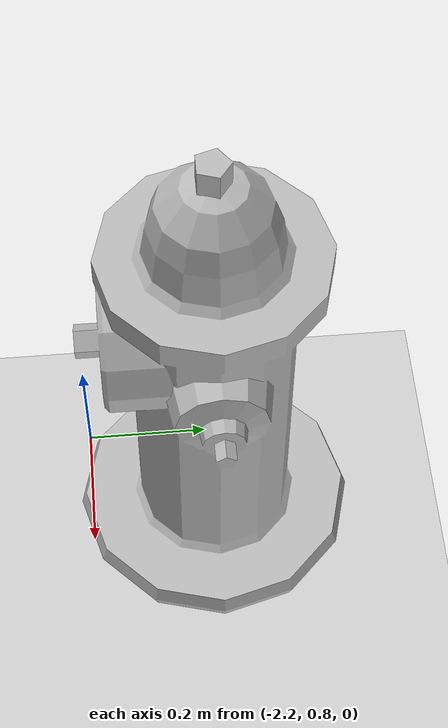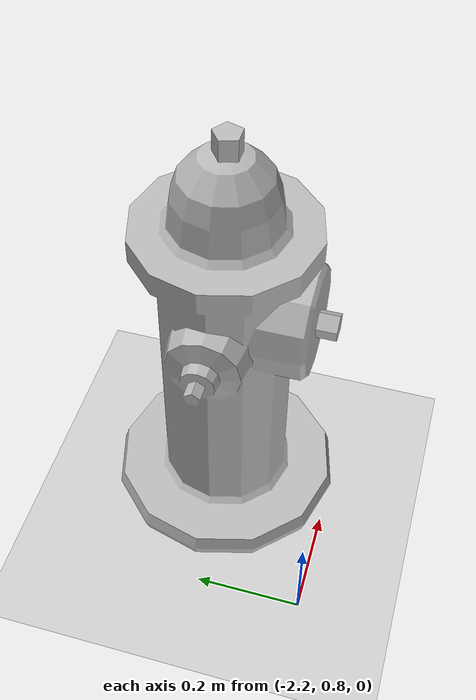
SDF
<sdf version="1.4">
 <world name="default">
  <model name="ground_plane">
   <static>1</static>
   <link name="link">
    <collision name="collision">
     <geometry><plane><normal>0 0 1</normal><size>100 100</size></plane></geometry>
     <surface><friction><ode><mu>100</mu><mu2>50</mu2></ode></friction></surface>
    </collision>
    <visual name="visual">
     <cast_shadows>0</cast_shadows>
     <geometry><plane><normal>0 0 1</normal><size>100 100</size></plane></geometry>
     <material>
      <script><uri>file://media/materials/scripts/gazebo.material</uri><name>Gazebo/Grey</name></script>
     </material>
    </visual>
    <velocity_decay><linear>0</linear><angular>0</angular></velocity_decay>
   </link>
  </model>
  <model name="fire_hydrant_0">
   <static>1</static>
   <link name="link">
    <collision name="collision">
     <geometry><mesh><uri>model://fire_hydrant/meshes/fire_hydrant.dae</uri></mesh></geometry>
    </collision>
    <visual name="visual">
     <geometry><mesh><uri>model://fire_hydrant/meshes/fire_hydrant.dae</uri></mesh></geometry>
    </visual>
    <velocity_decay><linear>0</linear><angular>0</angular></velocity_decay>
   </link>
   <pose>-2 1 0 0 -0 0</pose>
  </model>
 </world>
</sdf>
